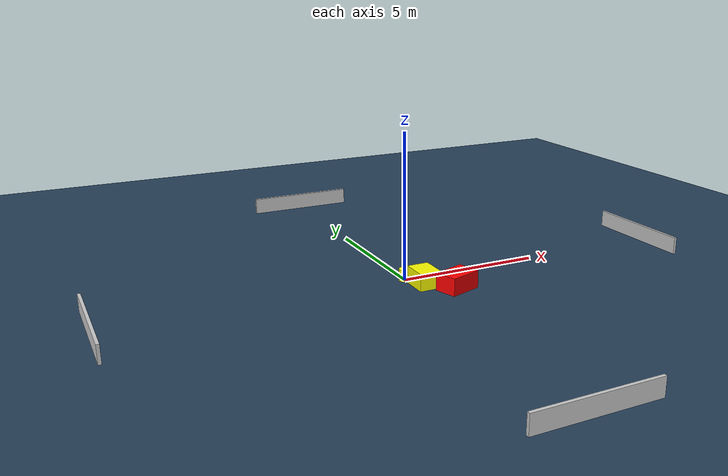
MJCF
<?xml version="1.0" ?>
<mujoco model="generated_environment">
  <option timestep="0.01" integrator="RK4" cone="elliptic"/>
  <default>
    <geom density="1"/>
  </default>
  <asset>
    <texture builtin="gradient" height="3072" name="skybox" rgb1="0.3 0.5 0.7" rgb2="0 0 0" type="skybox" width="512"/>
    <texture builtin="checker" height="300" name="groundplane" rgb1="0.2 0.3 0.4" rgb2="0.1 0.2 0.3" type="2d" width="300"/>
    <material name="groundplane" reflectance="0.2" texrepeat="5 5" texture="groundplane"/>
  </asset>
  <worldbody>
    <light dir="0 0 -1" directional="true" pos="0 0 1.5"/>
    <geom condim="3" friction="0.5 0.005 0.001" material="groundplane" name="floor" pos="0 0 0" size="0 0 0.05" type="plane"/>
    <body name="walls">
      <geom name="wall_1" condim="4" pos="-10.0 0.0 0.3" rgba="0.800000011920929 0.800000011920929 0.800000011920929 1.0" size="0.05 2.0 0.3" type="box"/>
      <geom name="wall_2" condim="4" pos="10.0 0.0 0.3" rgba="0.800000011920929 0.800000011920929 0.800000011920929 1.0" size="0.05 2.0 0.3" type="box"/>
      <geom name="wall_3" condim="4" pos="0.0 -10.0 0.3" rgba="0.800000011920929 0.800000011920929 0.800000011920929 1.0" size="2.0 0.05 0.3" type="box"/>
      <geom name="wall_4" condim="4" pos="0.0 10.0 0.3" rgba="0.800000011920929 0.800000011920929 0.800000011920929 1.0" size="2.0 0.05 0.3" type="box"/>
    </body>
    <body name="robot">
      <joint name="joint_x" type="slide" pos="0 0 0" axis="1 0 0"/>
      <joint name="joint_y" type="slide" pos="0 0 0" axis="0 1 0"/>
      <geom name="robot" type="cylinder" pos="0.0 0.0 0.2" size="0.2 0.2 0.0" mass="5.0" friction="1.0 0.005 0.0001" condim="4" rgba="1.0 1.0 0.0 1.0"/>
    </body>
    <body name="obstacle_1_movable">
      <geom name="obstacle_1_movable" condim="4" pos="0.33649402830410513 -0.7281370372182123 0.3" euler="0 0 89.5654146832311" friction="0.0 0.005 0.001" rgba="1.0 1.0 0.0 1.0" size="0.4590613803684919 0.3683447573476797 0.3" type="box" mass="0.1"/>
      <joint type="free"/>
    </body>
    <body name="obstacle_2_static">
      <geom name="obstacle_2_static" condim="4" pos="1.1493837309136619 -1.4844045640167782 0.3" euler="0 0 108.06383287428949" friction="0.0 0.005 0.001" rgba="1.0 0.0 0.0 1.0" size="0.39520285733062266 0.5742380521723853 0.3" type="box"/>
    </body>
  </worldbody>
  <actuator>
    <motor name="actuator_x" joint="joint_x" gear="1" ctrlrange="-1 1"/>
    <motor name="actuator_y" joint="joint_y" gear="1" ctrlrange="-1 1"/>
  </actuator>
</mujoco>
